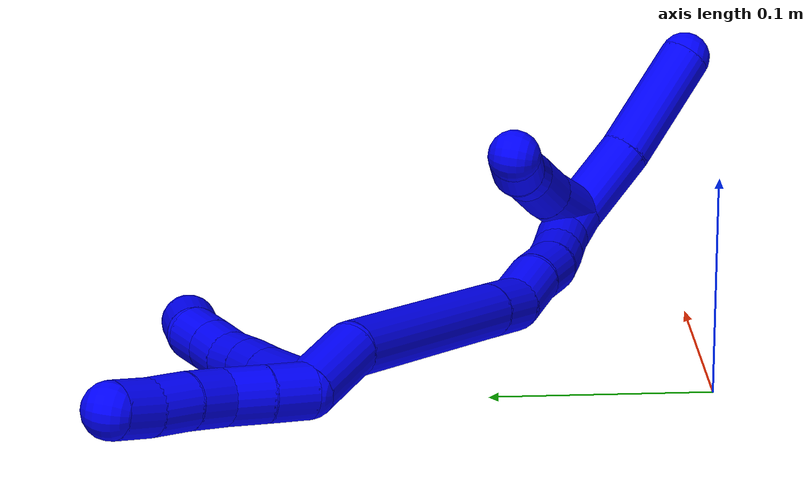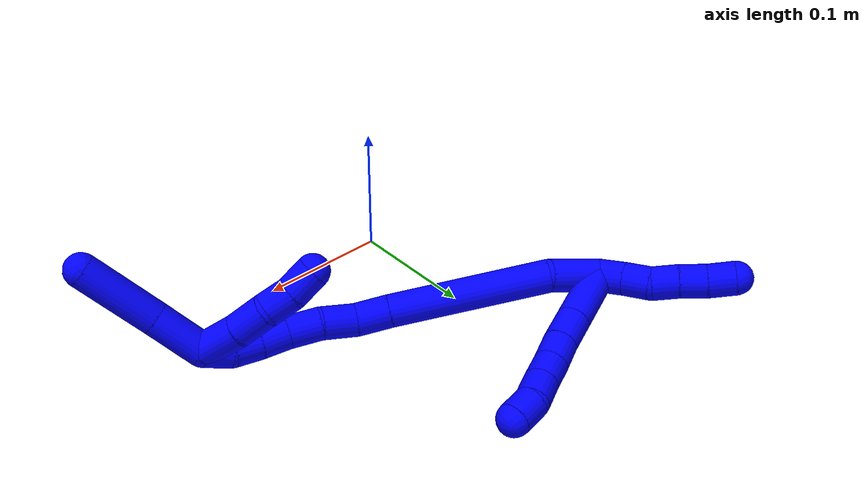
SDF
<sdf version="1.7">
 <world name="default">
  <model name="1">
   <static>0</static>
   <link name="1">
    <collision name="collision-cylinder-e_1_2_8">
     <pose>0.018285 -0.004562 0.013259 0.331347 0.916598 0.164604</pose>
     <geometry><cylinder><radius>0.0125</radius><length>0.046086</length></cylinder></geometry>
     <surface>
      <friction><ode><mu>1.16</mu><mu2>1.16</mu2><slip1>0</slip1><slip2>0</slip2></ode></friction>
      <contact><ode><kp>1e+06</kp><kd>1</kd><max_vel>0</max_vel><min_depth>0.001</min_depth></ode></contact>
     </surface>
    </collision>
    <visual name="visual-cylinder-e_1_2_8">
     <pose>0.018285 -0.004562 0.013259 0.331347 0.916598 0.164604</pose>
     <geometry><cylinder><radius>0.0125</radius><length>0.046086</length></cylinder></geometry>
     <material><ambient>0 0 1 1</ambient></material>
    </visual>
    <collision name="collision-cylinder-e_2_8_9">
     <pose>0.045738 -0.011866 0.033627 0.368183 0.877341 0.174272</pose>
     <geometry><cylinder><radius>0.0125</radius><length>0.023839</length></cylinder></geometry>
     <surface>
      <friction><ode><mu>1.16</mu><mu2>1.16</mu2><slip1>0</slip1><slip2>0</slip2></ode></friction>
      <contact><ode><kp>1e+06</kp><kd>1</kd><max_vel>0</max_vel><min_depth>0.001</min_depth></ode></contact>
     </surface>
    </collision>
    <visual name="visual-cylinder-e_2_8_9">
     <pose>0.045738 -0.011866 0.033627 0.368183 0.877341 0.174272</pose>
     <geometry><cylinder><radius>0.0125</radius><length>0.023839</length></cylinder></geometry>
     <material><ambient>0 0 1 1</ambient></material>
    </visual>
    <collision name="collision-cylinder-e_3_9_10">
     <pose>0.062255 -0.016581 0.047234 0.294807 0.82491 0.129754</pose>
     <geometry><cylinder><radius>0.0125</radius><length>0.020015</length></cylinder></geometry>
     <surface>
      <friction><ode><mu>1.16</mu><mu2>1.16</mu2><slip1>0</slip1><slip2>0</slip2></ode></friction>
      <contact><ode><kp>1e+06</kp><kd>1</kd><max_vel>0</max_vel><min_depth>0.001</min_depth></ode></contact>
     </surface>
    </collision>
    <visual name="visual-cylinder-e_3_9_10">
     <pose>0.062255 -0.016581 0.047234 0.294807 0.82491 0.129754</pose>
     <geometry><cylinder><radius>0.0125</radius><length>0.020015</length></cylinder></geometry>
     <material><ambient>0 0 1 1</ambient></material>
    </visual>
    <collision name="collision-cylinder-e_4_10_11">
     <pose>0.076411 -0.021753 0.060349 0.450277 0.747105 0.179052</pose>
     <geometry><cylinder><radius>0.0125</radius><length>0.020032</length></cylinder></geometry>
     <surface>
      <friction><ode><mu>1.16</mu><mu2>1.16</mu2><slip1>0</slip1><slip2>0</slip2></ode></friction>
      <contact><ode><kp>1e+06</kp><kd>1</kd><max_vel>0</max_vel><min_depth>0.001</min_depth></ode></contact>
     </surface>
    </collision>
    <visual name="visual-cylinder-e_4_10_11">
     <pose>0.076411 -0.021753 0.060349 0.450277 0.747105 0.179052</pose>
     <geometry><cylinder><radius>0.0125</radius><length>0.020032</length></cylinder></geometry>
     <material><ambient>0 0 1 1</ambient></material>
    </visual>
    <collision name="collision-cylinder-e_5_11_12">
     <pose>0.089646 -0.028116 0.073949 0.42548 0.697694 0.156812</pose>
     <geometry><cylinder><radius>0.0125</radius><length>0.020013</length></cylinder></geometry>
     <surface>
      <friction><ode><mu>1.16</mu><mu2>1.16</mu2><slip1>0</slip1><slip2>0</slip2></ode></friction>
      <contact><ode><kp>1e+06</kp><kd>1</kd><max_vel>0</max_vel><min_depth>0.001</min_depth></ode></contact>
     </surface>
    </collision>
    <visual name="visual-cylinder-e_5_11_12">
     <pose>0.089646 -0.028116 0.073949 0.42548 0.697694 0.156812</pose>
     <geometry><cylinder><radius>0.0125</radius><length>0.020013</length></cylinder></geometry>
     <material><ambient>0 0 1 1</ambient></material>
    </visual>
    <collision name="collision-cylinder-e_6_12_6">
     <pose>0.104292 -0.035105 0.085176 0.733519 0.96338 0.396355</pose>
     <geometry><cylinder><radius>0.0125</radius><length>0.020014</length></cylinder></geometry>
     <surface>
      <friction><ode><mu>1.16</mu><mu2>1.16</mu2><slip1>0</slip1><slip2>0</slip2></ode></friction>
      <contact><ode><kp>1e+06</kp><kd>1</kd><max_vel>0</max_vel><min_depth>0.001</min_depth></ode></contact>
     </surface>
    </collision>
    <visual name="visual-cylinder-e_6_12_6">
     <pose>0.104292 -0.035105 0.085176 0.733519 0.96338 0.396355</pose>
     <geometry><cylinder><radius>0.0125</radius><length>0.020014</length></cylinder></geometry>
     <material><ambient>0 0 1 1</ambient></material>
    </visual>
    <collision name="collision-cylinder-e_1_2_13">
     <pose>-0.006223 0.003249 0.007121 -0.428054 -0.6717 0.151457</pose>
     <geometry><cylinder><radius>0.0125</radius><length>0.02</length></cylinder></geometry>
     <surface>
      <friction><ode><mu>1.16</mu><mu2>1.16</mu2><slip1>0</slip1><slip2>0</slip2></ode></friction>
      <contact><ode><kp>1e+06</kp><kd>1</kd><max_vel>0</max_vel><min_depth>0.001</min_depth></ode></contact>
     </surface>
    </collision>
    <visual name="visual-cylinder-e_1_2_13">
     <pose>-0.006223 0.003249 0.007121 -0.428054 -0.6717 0.151457</pose>
     <geometry><cylinder><radius>0.0125</radius><length>0.02</length></cylinder></geometry>
     <material><ambient>0 0 1 1</ambient></material>
    </visual>
    <collision name="collision-cylinder-e_2_13_14">
     <pose>-0.018227 0.009678 0.021757 -0.400303 -0.616408 0.128986</pose>
     <geometry><cylinder><radius>0.0125</radius><length>0.02</length></cylinder></geometry>
     <surface>
      <friction><ode><mu>1.16</mu><mu2>1.16</mu2><slip1>0</slip1><slip2>0</slip2></ode></friction>
      <contact><ode><kp>1e+06</kp><kd>1</kd><max_vel>0</max_vel><min_depth>0.001</min_depth></ode></contact>
     </surface>
    </collision>
    <visual name="visual-cylinder-e_2_13_14">
     <pose>-0.018227 0.009678 0.021757 -0.400303 -0.616408 0.128986</pose>
     <geometry><cylinder><radius>0.0125</radius><length>0.02</length></cylinder></geometry>
     <material><ambient>0 0 1 1</ambient></material>
    </visual>
    <collision name="collision-cylinder-e_3_14_15">
     <pose>-0.032004 0.016127 0.034311 -0.575507 -0.926501 0.293548</pose>
     <geometry><cylinder><radius>0.0125</radius><length>0.02</length></cylinder></geometry>
     <surface>
      <friction><ode><mu>1.16</mu><mu2>1.16</mu2><slip1>0</slip1><slip2>0</slip2></ode></friction>
      <contact><ode><kp>1e+06</kp><kd>1</kd><max_vel>0</max_vel><min_depth>0.001</min_depth></ode></contact>
     </surface>
    </collision>
    <visual name="visual-cylinder-e_3_14_15">
     <pose>-0.032004 0.016127 0.034311 -0.575507 -0.926501 0.293548</pose>
     <geometry><cylinder><radius>0.0125</radius><length>0.02</length></cylinder></geometry>
     <material><ambient>0 0 1 1</ambient></material>
    </visual>
    <collision name="collision-cylinder-e_4_15_16">
     <pose>-0.047519 0.023179 0.044747 -0.611269 -0.851113 0.284095</pose>
     <geometry><cylinder><radius>0.0125</radius><length>0.02</length></cylinder></geometry>
     <surface>
      <friction><ode><mu>1.16</mu><mu2>1.16</mu2><slip1>0</slip1><slip2>0</slip2></ode></friction>
      <contact><ode><kp>1e+06</kp><kd>1</kd><max_vel>0</max_vel><min_depth>0.001</min_depth></ode></contact>
     </surface>
    </collision>
    <visual name="visual-cylinder-e_4_15_16">
     <pose>-0.047519 0.023179 0.044747 -0.611269 -0.851113 0.284095</pose>
     <geometry><cylinder><radius>0.0125</radius><length>0.02</length></cylinder></geometry>
     <material><ambient>0 0 1 1</ambient></material>
    </visual>
    <collision name="collision-cylinder-e_5_16_5">
     <pose>-0.063143 0.029993 0.05516 -0.543678 -0.944721 0.282935</pose>
     <geometry><cylinder><radius>0.0125</radius><length>0.02</length></cylinder></geometry>
     <surface>
      <friction><ode><mu>1.16</mu><mu2>1.16</mu2><slip1>0</slip1><slip2>0</slip2></ode></friction>
      <contact><ode><kp>1e+06</kp><kd>1</kd><max_vel>0</max_vel><min_depth>0.001</min_depth></ode></contact>
     </surface>
    </collision>
    <visual name="visual-cylinder-e_5_16_5">
     <pose>-0.063143 0.029993 0.05516 -0.543678 -0.944721 0.282935</pose>
     <geometry><cylinder><radius>0.0125</radius><length>0.02</length></cylinder></geometry>
     <material><ambient>0 0 1 1</ambient></material>
    </visual>
    <collision name="collision-cylinder-e_1_2_17">
     <pose>0.014038 -0.012541 -0.003919 1.87367 0.818494 1.066</pose>
     <geometry><cylinder><radius>0.0125</radius><length>0.038455</length></cylinder></geometry>
     <surface>
      <friction><ode><mu>1.16</mu><mu2>1.16</mu2><slip1>0</slip1><slip2>0</slip2></ode></friction>
      <contact><ode><kp>1e+06</kp><kd>1</kd><max_vel>0</max_vel><min_depth>0.001</min_depth></ode></contact>
     </surface>
    </collision>
    <visual name="visual-cylinder-e_1_2_17">
     <pose>0.014038 -0.012541 -0.003919 1.87367 0.818494 1.066</pose>
     <geometry><cylinder><radius>0.0125</radius><length>0.038455</length></cylinder></geometry>
     <material><ambient>0 0 1 1</ambient></material>
    </visual>
    <collision name="collision-cylinder-e_2_17_18">
     <pose>0.08086 -0.048152 -0.024763 2.20374 1.07404 1.73157</pose>
     <geometry><cylinder><radius>0.0125</radius><length>0.120079</length></cylinder></geometry>
     <surface>
      <friction><ode><mu>1.16</mu><mu2>1.16</mu2><slip1>0</slip1><slip2>0</slip2></ode></friction>
      <contact><ode><kp>1e+06</kp><kd>1</kd><max_vel>0</max_vel><min_depth>0.001</min_depth></ode></contact>
     </surface>
    </collision>
    <visual name="visual-cylinder-e_2_17_18">
     <pose>0.08086 -0.048152 -0.024763 2.20374 1.07404 1.73157</pose>
     <geometry><cylinder><radius>0.0125</radius><length>0.120079</length></cylinder></geometry>
     <material><ambient>0 0 1 1</ambient></material>
    </visual>
    <collision name="collision-cylinder-e_3_18_19">
     <pose>0.145343 -0.075996 -0.044959 2.17149 1.11147 1.73414</pose>
     <geometry><cylinder><radius>0.0125</radius><length>0.026107</length></cylinder></geometry>
     <surface>
      <friction><ode><mu>1.16</mu><mu2>1.16</mu2><slip1>0</slip1><slip2>0</slip2></ode></friction>
      <contact><ode><kp>1e+06</kp><kd>1</kd><max_vel>0</max_vel><min_depth>0.001</min_depth></ode></contact>
     </surface>
    </collision>
    <visual name="visual-cylinder-e_3_18_19">
     <pose>0.145343 -0.075996 -0.044959 2.17149 1.11147 1.73414</pose>
     <geometry><cylinder><radius>0.0125</radius><length>0.026107</length></cylinder></geometry>
     <material><ambient>0 0 1 1</ambient></material>
    </visual>
    <collision name="collision-cylinder-e_4_19_20">
     <pose>0.167164 -0.089293 -0.04955 1.7245 0.865046 0.988274</pose>
     <geometry><cylinder><radius>0.0125</radius><length>0.026593</length></cylinder></geometry>
     <surface>
      <friction><ode><mu>1.16</mu><mu2>1.16</mu2><slip1>0</slip1><slip2>0</slip2></ode></friction>
      <contact><ode><kp>1e+06</kp><kd>1</kd><max_vel>0</max_vel><min_depth>0.001</min_depth></ode></contact>
     </surface>
    </collision>
    <visual name="visual-cylinder-e_4_19_20">
     <pose>0.167164 -0.089293 -0.04955 1.7245 0.865046 0.988274</pose>
     <geometry><cylinder><radius>0.0125</radius><length>0.026593</length></cylinder></geometry>
     <material><ambient>0 0 1 1</ambient></material>
    </visual>
    <collision name="collision-cylinder-e_5_20_21">
     <pose>0.188388 -0.103812 -0.052154 1.78159 1.06619 1.26077</pose>
     <geometry><cylinder><radius>0.0125</radius><length>0.025369</length></cylinder></geometry>
     <surface>
      <friction><ode><mu>1.16</mu><mu2>1.16</mu2><slip1>0</slip1><slip2>0</slip2></ode></friction>
      <contact><ode><kp>1e+06</kp><kd>1</kd><max_vel>0</max_vel><min_depth>0.001</min_depth></ode></contact>
     </surface>
    </collision>
    <visual name="visual-cylinder-e_5_20_21">
     <pose>0.188388 -0.103812 -0.052154 1.78159 1.06619 1.26077</pose>
     <geometry><cylinder><radius>0.0125</radius><length>0.025369</length></cylinder></geometry>
     <material><ambient>0 0 1 1</ambient></material>
    </visual>
    <collision name="collision-cylinder-e_6_21_22">
     <pose>0.208928 -0.115186 -0.052603 1.41685 1.04772 0.919226</pose>
     <geometry><cylinder><radius>0.0125</radius><length>0.021785</length></cylinder></geometry>
     <surface>
      <friction><ode><mu>1.16</mu><mu2>1.16</mu2><slip1>0</slip1><slip2>0</slip2></ode></friction>
      <contact><ode><kp>1e+06</kp><kd>1</kd><max_vel>0</max_vel><min_depth>0.001</min_depth></ode></contact>
     </surface>
    </collision>
    <visual name="visual-cylinder-e_6_21_22">
     <pose>0.208928 -0.115186 -0.052603 1.41685 1.04772 0.919226</pose>
     <geometry><cylinder><radius>0.0125</radius><length>0.021785</length></cylinder></geometry>
     <material><ambient>0 0 1 1</ambient></material>
    </visual>
    <collision name="collision-cylinder-e_7_22_23">
     <pose>0.226777 -0.126529 -0.050763 1.40392 0.947376 0.818079</pose>
     <geometry><cylinder><radius>0.0125</radius><length>0.020725</length></cylinder></geometry>
     <surface>
      <friction><ode><mu>1.16</mu><mu2>1.16</mu2><slip1>0</slip1><slip2>0</slip2></ode></friction>
      <contact><ode><kp>1e+06</kp><kd>1</kd><max_vel>0</max_vel><min_depth>0.001</min_depth></ode></contact>
     </surface>
    </collision>
    <visual name="visual-cylinder-e_7_22_23">
     <pose>0.226777 -0.126529 -0.050763 1.40392 0.947376 0.818079</pose>
     <geometry><cylinder><radius>0.0125</radius><length>0.020725</length></cylinder></geometry>
     <material><ambient>0 0 1 1</ambient></material>
    </visual>
    <collision name="collision-cylinder-e_8_23_1">
     <pose>0.242009 -0.140344 -0.050727 1.69358 0.711471 0.795616</pose>
     <geometry><cylinder><radius>0.0125</radius><length>0.020886</length></cylinder></geometry>
     <surface>
      <friction><ode><mu>1.16</mu><mu2>1.16</mu2><slip1>0</slip1><slip2>0</slip2></ode></friction>
      <contact><ode><kp>1e+06</kp><kd>1</kd><max_vel>0</max_vel><min_depth>0.001</min_depth></ode></contact>
     </surface>
    </collision>
    <visual name="visual-cylinder-e_8_23_1">
     <pose>0.242009 -0.140344 -0.050727 1.69358 0.711471 0.795616</pose>
     <geometry><cylinder><radius>0.0125</radius><length>0.020886</length></cylinder></geometry>
     <material><ambient>0 0 1 1</ambient></material>
    </visual>
    <collision name="collision-cylinder-e_1_1_24">
     <pose>0.233961 -0.148353 -0.046383 0.029742 -1.22741 -0.020952</pose>
     <geometry><cylinder><radius>0.0125</radius><length>0.031577</length></cylinder></geometry>
     <surface>
      <friction><ode><mu>1.16</mu><mu2>1.16</mu2><slip1>0</slip1><slip2>0</slip2></ode></friction>
      <contact><ode><kp>1e+06</kp><kd>1</kd><max_vel>0</max_vel><min_depth>0.001</min_depth></ode></contact>
     </surface>
    </collision>
    <visual name="visual-cylinder-e_1_1_24">
     <pose>0.233961 -0.148353 -0.046383 0.029742 -1.22741 -0.020952</pose>
     <geometry><cylinder><radius>0.0125</radius><length>0.031577</length></cylinder></geometry>
     <material><ambient>0 0 1 1</ambient></material>
    </visual>
    <collision name="collision-cylinder-e_2_24_25">
     <pose>0.20658 -0.149395 -0.037879 0.270236 -1.31214 -0.208551</pose>
     <geometry><cylinder><radius>0.0125</radius><length>0.025889</length></cylinder></geometry>
     <surface>
      <friction><ode><mu>1.16</mu><mu2>1.16</mu2><slip1>0</slip1><slip2>0</slip2></ode></friction>
      <contact><ode><kp>1e+06</kp><kd>1</kd><max_vel>0</max_vel><min_depth>0.001</min_depth></ode></contact>
     </surface>
    </collision>
    <visual name="visual-cylinder-e_2_24_25">
     <pose>0.20658 -0.149395 -0.037879 0.270236 -1.31214 -0.208551</pose>
     <geometry><cylinder><radius>0.0125</radius><length>0.025889</length></cylinder></geometry>
     <material><ambient>0 0 1 1</ambient></material>
    </visual>
    <collision name="collision-cylinder-e_3_25_26">
     <pose>0.183846 -0.148785 -0.034416 -1.39106 -1.42332 1.24783</pose>
     <geometry><cylinder><radius>0.0125</radius><length>0.020663</length></cylinder></geometry>
     <surface>
      <friction><ode><mu>1.16</mu><mu2>1.16</mu2><slip1>0</slip1><slip2>0</slip2></ode></friction>
      <contact><ode><kp>1e+06</kp><kd>1</kd><max_vel>0</max_vel><min_depth>0.001</min_depth></ode></contact>
     </surface>
    </collision>
    <visual name="visual-cylinder-e_3_25_26">
     <pose>0.183846 -0.148785 -0.034416 -1.39106 -1.42332 1.24783</pose>
     <geometry><cylinder><radius>0.0125</radius><length>0.020663</length></cylinder></geometry>
     <material><ambient>0 0 1 1</ambient></material>
    </visual>
    <collision name="collision-cylinder-e_4_26_4">
     <pose>0.162735 -0.148077 -0.034719 2.20127 -1.48171 -2.12736</pose>
     <geometry><cylinder><radius>0.0125</radius><length>0.02187</length></cylinder></geometry>
     <surface>
      <friction><ode><mu>1.16</mu><mu2>1.16</mu2><slip1>0</slip1><slip2>0</slip2></ode></friction>
      <contact><ode><kp>1e+06</kp><kd>1</kd><max_vel>0</max_vel><min_depth>0.001</min_depth></ode></contact>
     </surface>
    </collision>
    <visual name="visual-cylinder-e_4_26_4">
     <pose>0.162735 -0.148077 -0.034719 2.20127 -1.48171 -2.12736</pose>
     <geometry><cylinder><radius>0.0125</radius><length>0.02187</length></cylinder></geometry>
     <material><ambient>0 0 1 1</ambient></material>
    </visual>
    <collision name="collision-cylinder-e_1_1_27">
     <pose>0.253041 -0.166301 -0.059658 1.9851 0.209856 0.319965</pose>
     <geometry><cylinder><radius>0.0125</radius><length>0.040446</length></cylinder></geometry>
     <surface>
      <friction><ode><mu>1.16</mu><mu2>1.16</mu2><slip1>0</slip1><slip2>0</slip2></ode></friction>
      <contact><ode><kp>1e+06</kp><kd>1</kd><max_vel>0</max_vel><min_depth>0.001</min_depth></ode></contact>
     </surface>
    </collision>
    <visual name="visual-cylinder-e_1_1_27">
     <pose>0.253041 -0.166301 -0.059658 1.9851 0.209856 0.319965</pose>
     <geometry><cylinder><radius>0.0125</radius><length>0.040446</length></cylinder></geometry>
     <material><ambient>0 0 1 1</ambient></material>
    </visual>
    <collision name="collision-cylinder-e_2_27_3">
     <pose>0.263056 -0.212146 -0.076761 1.8891 0.196115 0.270324</pose>
     <geometry><cylinder><radius>0.0125</radius><length>0.059554</length></cylinder></geometry>
     <surface>
      <friction><ode><mu>1.16</mu><mu2>1.16</mu2><slip1>0</slip1><slip2>0</slip2></ode></friction>
      <contact><ode><kp>1e+06</kp><kd>1</kd><max_vel>0</max_vel><min_depth>0.001</min_depth></ode></contact>
     </surface>
    </collision>
    <visual name="visual-cylinder-e_2_27_3">
     <pose>0.263056 -0.212146 -0.076761 1.8891 0.196115 0.270324</pose>
     <geometry><cylinder><radius>0.0125</radius><length>0.059554</length></cylinder></geometry>
     <material><ambient>0 0 1 1</ambient></material>
    </visual>
    <collision name="collision-sphere-3">
     <pose>0.268858 -0.239885 -0.085901 0 -0 0</pose>
     <geometry><sphere><radius>0.0125</radius></sphere></geometry>
     <surface>
      <friction><ode><mu>1.16</mu><mu2>1.16</mu2><slip1>0</slip1><slip2>0</slip2></ode></friction>
      <contact><ode><kp>1e+06</kp><kd>1</kd><max_vel>0</max_vel><min_depth>0.001</min_depth></ode></contact>
     </surface>
    </collision>
    <visual name="visual-sphere-3">
     <pose>0.268858 -0.239885 -0.085901 0 -0 0</pose>
     <geometry><sphere><radius>0.0125</radius></sphere></geometry>
     <material><ambient>0 0 1 1</ambient></material>
    </visual>
    <collision name="collision-sphere-27">
     <pose>0.257254 -0.184407 -0.067621 0 -0 0</pose>
     <geometry><sphere><radius>0.0125</radius></sphere></geometry>
     <surface>
      <friction><ode><mu>1.16</mu><mu2>1.16</mu2><slip1>0</slip1><slip2>0</slip2></ode></friction>
      <contact><ode><kp>1e+06</kp><kd>1</kd><max_vel>0</max_vel><min_depth>0.001</min_depth></ode></contact>
     </surface>
    </collision>
    <visual name="visual-sphere-27">
     <pose>0.257254 -0.184407 -0.067621 0 -0 0</pose>
     <geometry><sphere><radius>0.0125</radius></sphere></geometry>
     <material><ambient>0 0 1 1</ambient></material>
    </visual>
    <collision name="collision-sphere-4">
     <pose>0.151844 -0.148863 -0.035292 0 -0 0</pose>
     <geometry><sphere><radius>0.0125</radius></sphere></geometry>
     <surface>
      <friction><ode><mu>1.16</mu><mu2>1.16</mu2><slip1>0</slip1><slip2>0</slip2></ode></friction>
      <contact><ode><kp>1e+06</kp><kd>1</kd><max_vel>0</max_vel><min_depth>0.001</min_depth></ode></contact>
     </surface>
    </collision>
    <visual name="visual-sphere-4">
     <pose>0.151844 -0.148863 -0.035292 0 -0 0</pose>
     <geometry><sphere><radius>0.0125</radius></sphere></geometry>
     <material><ambient>0 0 1 1</ambient></material>
    </visual>
    <collision name="collision-sphere-26">
     <pose>0.173627 -0.147291 -0.034145 0 -0 0</pose>
     <geometry><sphere><radius>0.0125</radius></sphere></geometry>
     <surface>
      <friction><ode><mu>1.16</mu><mu2>1.16</mu2><slip1>0</slip1><slip2>0</slip2></ode></friction>
      <contact><ode><kp>1e+06</kp><kd>1</kd><max_vel>0</max_vel><min_depth>0.001</min_depth></ode></contact>
     </surface>
    </collision>
    <visual name="visual-sphere-26">
     <pose>0.173627 -0.147291 -0.034145 0 -0 0</pose>
     <geometry><sphere><radius>0.0125</radius></sphere></geometry>
     <material><ambient>0 0 1 1</ambient></material>
    </visual>
    <collision name="collision-sphere-25">
     <pose>0.194066 -0.150278 -0.034688 0 -0 0</pose>
     <geometry><sphere><radius>0.0125</radius></sphere></geometry>
     <surface>
      <friction><ode><mu>1.16</mu><mu2>1.16</mu2><slip1>0</slip1><slip2>0</slip2></ode></friction>
      <contact><ode><kp>1e+06</kp><kd>1</kd><max_vel>0</max_vel><min_depth>0.001</min_depth></ode></contact>
     </surface>
    </collision>
    <visual name="visual-sphere-25">
     <pose>0.194066 -0.150278 -0.034688 0 -0 0</pose>
     <geometry><sphere><radius>0.0125</radius></sphere></geometry>
     <material><ambient>0 0 1 1</ambient></material>
    </visual>
    <collision name="collision-sphere-24">
     <pose>0.219094 -0.148511 -0.04107 0 -0 0</pose>
     <geometry><sphere><radius>0.0125</radius></sphere></geometry>
     <surface>
      <friction><ode><mu>1.16</mu><mu2>1.16</mu2><slip1>0</slip1><slip2>0</slip2></ode></friction>
      <contact><ode><kp>1e+06</kp><kd>1</kd><max_vel>0</max_vel><min_depth>0.001</min_depth></ode></contact>
     </surface>
    </collision>
    <visual name="visual-sphere-24">
     <pose>0.219094 -0.148511 -0.04107 0 -0 0</pose>
     <geometry><sphere><radius>0.0125</radius></sphere></geometry>
     <material><ambient>0 0 1 1</ambient></material>
    </visual>
    <collision name="collision-sphere-1">
     <pose>0.248828 -0.148195 -0.051696 0 -0 0</pose>
     <geometry><sphere><radius>0.0125</radius></sphere></geometry>
     <surface>
      <friction><ode><mu>1.16</mu><mu2>1.16</mu2><slip1>0</slip1><slip2>0</slip2></ode></friction>
      <contact><ode><kp>1e+06</kp><kd>1</kd><max_vel>0</max_vel><min_depth>0.001</min_depth></ode></contact>
     </surface>
    </collision>
    <visual name="visual-sphere-1">
     <pose>0.248828 -0.148195 -0.051696 0 -0 0</pose>
     <geometry><sphere><radius>0.0125</radius></sphere></geometry>
     <material><ambient>0 0 1 1</ambient></material>
    </visual>
    <collision name="collision-sphere-23">
     <pose>0.23519 -0.132494 -0.049759 0 -0 0</pose>
     <geometry><sphere><radius>0.0125</radius></sphere></geometry>
     <surface>
      <friction><ode><mu>1.16</mu><mu2>1.16</mu2><slip1>0</slip1><slip2>0</slip2></ode></friction>
      <contact><ode><kp>1e+06</kp><kd>1</kd><max_vel>0</max_vel><min_depth>0.001</min_depth></ode></contact>
     </surface>
    </collision>
    <visual name="visual-sphere-23">
     <pose>0.23519 -0.132494 -0.049759 0 -0 0</pose>
     <geometry><sphere><radius>0.0125</radius></sphere></geometry>
     <material><ambient>0 0 1 1</ambient></material>
    </visual>
    <collision name="collision-sphere-22">
     <pose>0.218364 -0.120563 -0.051768 0 -0 0</pose>
     <geometry><sphere><radius>0.0125</radius></sphere></geometry>
     <surface>
      <friction><ode><mu>1.16</mu><mu2>1.16</mu2><slip1>0</slip1><slip2>0</slip2></ode></friction>
      <contact><ode><kp>1e+06</kp><kd>1</kd><max_vel>0</max_vel><min_depth>0.001</min_depth></ode></contact>
     </surface>
    </collision>
    <visual name="visual-sphere-22">
     <pose>0.218364 -0.120563 -0.051768 0 -0 0</pose>
     <geometry><sphere><radius>0.0125</radius></sphere></geometry>
     <material><ambient>0 0 1 1</ambient></material>
    </visual>
    <collision name="collision-sphere-21">
     <pose>0.199492 -0.109809 -0.053437 0 -0 0</pose>
     <geometry><sphere><radius>0.0125</radius></sphere></geometry>
     <surface>
      <friction><ode><mu>1.16</mu><mu2>1.16</mu2><slip1>0</slip1><slip2>0</slip2></ode></friction>
      <contact><ode><kp>1e+06</kp><kd>1</kd><max_vel>0</max_vel><min_depth>0.001</min_depth></ode></contact>
     </surface>
    </collision>
    <visual name="visual-sphere-21">
     <pose>0.199492 -0.109809 -0.053437 0 -0 0</pose>
     <geometry><sphere><radius>0.0125</radius></sphere></geometry>
     <material><ambient>0 0 1 1</ambient></material>
    </visual>
    <collision name="collision-sphere-12">
     <pose>0.096075 -0.031281 0.080934 0 -0 0</pose>
     <geometry><sphere><radius>0.0125</radius></sphere></geometry>
     <surface>
      <friction><ode><mu>1.16</mu><mu2>1.16</mu2><slip1>0</slip1><slip2>0</slip2></ode></friction>
      <contact><ode><kp>1e+06</kp><kd>1</kd><max_vel>0</max_vel><min_depth>0.001</min_depth></ode></contact>
     </surface>
    </collision>
    <visual name="visual-sphere-12">
     <pose>0.096075 -0.031281 0.080934 0 -0 0</pose>
     <geometry><sphere><radius>0.0125</radius></sphere></geometry>
     <material><ambient>0 0 1 1</ambient></material>
    </visual>
    <collision name="collision-sphere-11">
     <pose>0.083218 -0.024951 0.066965 0 -0 0</pose>
     <geometry><sphere><radius>0.0125</radius></sphere></geometry>
     <surface>
      <friction><ode><mu>1.16</mu><mu2>1.16</mu2><slip1>0</slip1><slip2>0</slip2></ode></friction>
      <contact><ode><kp>1e+06</kp><kd>1</kd><max_vel>0</max_vel><min_depth>0.001</min_depth></ode></contact>
     </surface>
    </collision>
    <visual name="visual-sphere-11">
     <pose>0.083218 -0.024951 0.066965 0 -0 0</pose>
     <geometry><sphere><radius>0.0125</radius></sphere></geometry>
     <material><ambient>0 0 1 1</ambient></material>
    </visual>
    <collision name="collision-sphere-10">
     <pose>0.069605 -0.018554 0.053733 0 -0 0</pose>
     <geometry><sphere><radius>0.0125</radius></sphere></geometry>
     <surface>
      <friction><ode><mu>1.16</mu><mu2>1.16</mu2><slip1>0</slip1><slip2>0</slip2></ode></friction>
      <contact><ode><kp>1e+06</kp><kd>1</kd><max_vel>0</max_vel><min_depth>0.001</min_depth></ode></contact>
     </surface>
    </collision>
    <visual name="visual-sphere-10">
     <pose>0.069605 -0.018554 0.053733 0 -0 0</pose>
     <geometry><sphere><radius>0.0125</radius></sphere></geometry>
     <material><ambient>0 0 1 1</ambient></material>
    </visual>
    <collision name="collision-sphere-9">
     <pose>0.054904 -0.014608 0.040736 0 -0 0</pose>
     <geometry><sphere><radius>0.0125</radius></sphere></geometry>
     <surface>
      <friction><ode><mu>1.16</mu><mu2>1.16</mu2><slip1>0</slip1><slip2>0</slip2></ode></friction>
      <contact><ode><kp>1e+06</kp><kd>1</kd><max_vel>0</max_vel><min_depth>0.001</min_depth></ode></contact>
     </surface>
    </collision>
    <visual name="visual-sphere-9">
     <pose>0.054904 -0.014608 0.040736 0 -0 0</pose>
     <geometry><sphere><radius>0.0125</radius></sphere></geometry>
     <material><ambient>0 0 1 1</ambient></material>
    </visual>
    <collision name="collision-sphere-2">
     <geometry><sphere><radius>0.0125</radius></sphere></geometry>
     <surface>
      <friction><ode><mu>1.16</mu><mu2>1.16</mu2><slip1>0</slip1><slip2>0</slip2></ode></friction>
      <contact><ode><kp>1e+06</kp><kd>1</kd><max_vel>0</max_vel><min_depth>0.001</min_depth></ode></contact>
     </surface>
    </collision>
    <visual name="visual-sphere-2">
     <geometry><sphere><radius>0.0125</radius></sphere></geometry>
     <material><ambient>0 0 1 1</ambient></material>
    </visual>
    <collision name="collision-sphere-19">
     <pose>0.157044 -0.08077 -0.04823 0 -0 0</pose>
     <geometry><sphere><radius>0.0125</radius></sphere></geometry>
     <surface>
      <friction><ode><mu>1.16</mu><mu2>1.16</mu2><slip1>0</slip1><slip2>0</slip2></ode></friction>
      <contact><ode><kp>1e+06</kp><kd>1</kd><max_vel>0</max_vel><min_depth>0.001</min_depth></ode></contact>
     </surface>
    </collision>
    <visual name="visual-sphere-19">
     <pose>0.157044 -0.08077 -0.04823 0 -0 0</pose>
     <geometry><sphere><radius>0.0125</radius></sphere></geometry>
     <material><ambient>0 0 1 1</ambient></material>
    </visual>
    <collision name="collision-sphere-8">
     <pose>0.036571 -0.009123 0.026519 0 -0 0</pose>
     <geometry><sphere><radius>0.0125</radius></sphere></geometry>
     <surface>
      <friction><ode><mu>1.16</mu><mu2>1.16</mu2><slip1>0</slip1><slip2>0</slip2></ode></friction>
      <contact><ode><kp>1e+06</kp><kd>1</kd><max_vel>0</max_vel><min_depth>0.001</min_depth></ode></contact>
     </surface>
    </collision>
    <visual name="visual-sphere-8">
     <pose>0.036571 -0.009123 0.026519 0 -0 0</pose>
     <geometry><sphere><radius>0.0125</radius></sphere></geometry>
     <material><ambient>0 0 1 1</ambient></material>
    </visual>
    <collision name="collision-sphere-6">
     <pose>0.112509 -0.038928 0.089419 0 -0 0</pose>
     <geometry><sphere><radius>0.0125</radius></sphere></geometry>
     <surface>
      <friction><ode><mu>1.16</mu><mu2>1.16</mu2><slip1>0</slip1><slip2>0</slip2></ode></friction>
      <contact><ode><kp>1e+06</kp><kd>1</kd><max_vel>0</max_vel><min_depth>0.001</min_depth></ode></contact>
     </surface>
    </collision>
    <visual name="visual-sphere-6">
     <pose>0.112509 -0.038928 0.089419 0 -0 0</pose>
     <geometry><sphere><radius>0.0125</radius></sphere></geometry>
     <material><ambient>0 0 1 1</ambient></material>
    </visual>
    <collision name="collision-sphere-13">
     <pose>-0.012446 0.006499 0.014243 0 -0 0</pose>
     <geometry><sphere><radius>0.0125</radius></sphere></geometry>
     <surface>
      <friction><ode><mu>1.16</mu><mu2>1.16</mu2><slip1>0</slip1><slip2>0</slip2></ode></friction>
      <contact><ode><kp>1e+06</kp><kd>1</kd><max_vel>0</max_vel><min_depth>0.001</min_depth></ode></contact>
     </surface>
    </collision>
    <visual name="visual-sphere-13">
     <pose>-0.012446 0.006499 0.014243 0 -0 0</pose>
     <geometry><sphere><radius>0.0125</radius></sphere></geometry>
     <material><ambient>0 0 1 1</ambient></material>
    </visual>
    <collision name="collision-sphere-14">
     <pose>-0.024009 0.012858 0.029272 0 -0 0</pose>
     <geometry><sphere><radius>0.0125</radius></sphere></geometry>
     <surface>
      <friction><ode><mu>1.16</mu><mu2>1.16</mu2><slip1>0</slip1><slip2>0</slip2></ode></friction>
      <contact><ode><kp>1e+06</kp><kd>1</kd><max_vel>0</max_vel><min_depth>0.001</min_depth></ode></contact>
     </surface>
    </collision>
    <visual name="visual-sphere-14">
     <pose>-0.024009 0.012858 0.029272 0 -0 0</pose>
     <geometry><sphere><radius>0.0125</radius></sphere></geometry>
     <material><ambient>0 0 1 1</ambient></material>
    </visual>
    <collision name="collision-sphere-15">
     <pose>-0.039999 0.019396 0.03935 0 -0 0</pose>
     <geometry><sphere><radius>0.0125</radius></sphere></geometry>
     <surface>
      <friction><ode><mu>1.16</mu><mu2>1.16</mu2><slip1>0</slip1><slip2>0</slip2></ode></friction>
      <contact><ode><kp>1e+06</kp><kd>1</kd><max_vel>0</max_vel><min_depth>0.001</min_depth></ode></contact>
     </surface>
    </collision>
    <visual name="visual-sphere-15">
     <pose>-0.039999 0.019396 0.03935 0 -0 0</pose>
     <geometry><sphere><radius>0.0125</radius></sphere></geometry>
     <material><ambient>0 0 1 1</ambient></material>
    </visual>
    <collision name="collision-sphere-16">
     <pose>-0.055039 0.026962 0.050145 0 -0 0</pose>
     <geometry><sphere><radius>0.0125</radius></sphere></geometry>
     <surface>
      <friction><ode><mu>1.16</mu><mu2>1.16</mu2><slip1>0</slip1><slip2>0</slip2></ode></friction>
      <contact><ode><kp>1e+06</kp><kd>1</kd><max_vel>0</max_vel><min_depth>0.001</min_depth></ode></contact>
     </surface>
    </collision>
    <visual name="visual-sphere-16">
     <pose>-0.055039 0.026962 0.050145 0 -0 0</pose>
     <geometry><sphere><radius>0.0125</radius></sphere></geometry>
     <material><ambient>0 0 1 1</ambient></material>
    </visual>
    <collision name="collision-sphere-5">
     <pose>-0.071246 0.033024 0.060175 0 -0 0</pose>
     <geometry><sphere><radius>0.0125</radius></sphere></geometry>
     <surface>
      <friction><ode><mu>1.16</mu><mu2>1.16</mu2><slip1>0</slip1><slip2>0</slip2></ode></friction>
      <contact><ode><kp>1e+06</kp><kd>1</kd><max_vel>0</max_vel><min_depth>0.001</min_depth></ode></contact>
     </surface>
    </collision>
    <visual name="visual-sphere-5">
     <pose>-0.071246 0.033024 0.060175 0 -0 0</pose>
     <geometry><sphere><radius>0.0125</radius></sphere></geometry>
     <material><ambient>0 0 1 1</ambient></material>
    </visual>
    <collision name="collision-sphere-17">
     <pose>0.028077 -0.025081 -0.007838 0 -0 0</pose>
     <geometry><sphere><radius>0.0125</radius></sphere></geometry>
     <surface>
      <friction><ode><mu>1.16</mu><mu2>1.16</mu2><slip1>0</slip1><slip2>0</slip2></ode></friction>
      <contact><ode><kp>1e+06</kp><kd>1</kd><max_vel>0</max_vel><min_depth>0.001</min_depth></ode></contact>
     </surface>
    </collision>
    <visual name="visual-sphere-17">
     <pose>0.028077 -0.025081 -0.007838 0 -0 0</pose>
     <geometry><sphere><radius>0.0125</radius></sphere></geometry>
     <material><ambient>0 0 1 1</ambient></material>
    </visual>
    <collision name="collision-sphere-18">
     <pose>0.133642 -0.071222 -0.041688 0 -0 0</pose>
     <geometry><sphere><radius>0.0125</radius></sphere></geometry>
     <surface>
      <friction><ode><mu>1.16</mu><mu2>1.16</mu2><slip1>0</slip1><slip2>0</slip2></ode></friction>
      <contact><ode><kp>1e+06</kp><kd>1</kd><max_vel>0</max_vel><min_depth>0.001</min_depth></ode></contact>
     </surface>
    </collision>
    <visual name="visual-sphere-18">
     <pose>0.133642 -0.071222 -0.041688 0 -0 0</pose>
     <geometry><sphere><radius>0.0125</radius></sphere></geometry>
     <material><ambient>0 0 1 1</ambient></material>
    </visual>
    <collision name="collision-sphere-20">
     <pose>0.177284 -0.097815 -0.050871 0 -0 0</pose>
     <geometry><sphere><radius>0.0125</radius></sphere></geometry>
     <surface>
      <friction><ode><mu>1.16</mu><mu2>1.16</mu2><slip1>0</slip1><slip2>0</slip2></ode></friction>
      <contact><ode><kp>1e+06</kp><kd>1</kd><max_vel>0</max_vel><min_depth>0.001</min_depth></ode></contact>
     </surface>
    </collision>
    <visual name="visual-sphere-20">
     <pose>0.177284 -0.097815 -0.050871 0 -0 0</pose>
     <geometry><sphere><radius>0.0125</radius></sphere></geometry>
     <material><ambient>0 0 1 1</ambient></material>
    </visual>
    <inertial>
     <pose>0.118424 -0.075235 -0.014777 0 -0 0</pose>
     <mass>0.75</mass>
     <inertia>
      <ixx>0.000144</ixx>
      <ixy>0</ixy>
      <ixz>0</ixz>
      <iyy>0.000226</iyy>
      <iyz>0</iyz>
      <izz>-4.9e-05</izz>
     </inertia>
    </inertial>
   </link>
   <pose>-0.069144 0.181973 0.033664 -1.47656 0.573253 -0.271548</pose>
  </model>
 </world>
</sdf>
